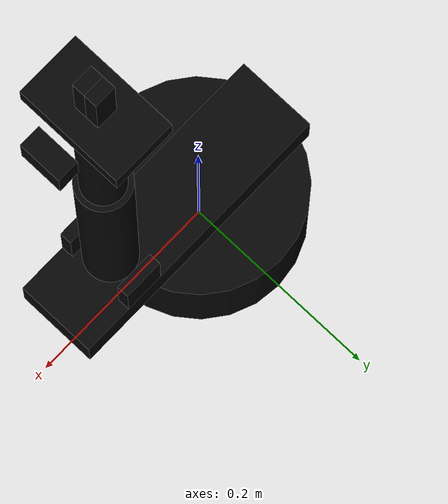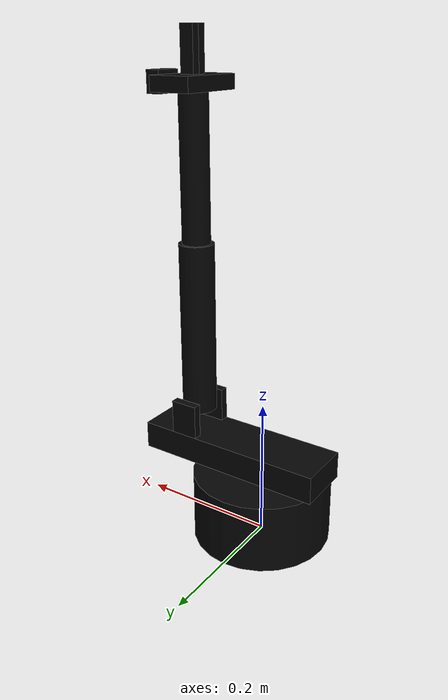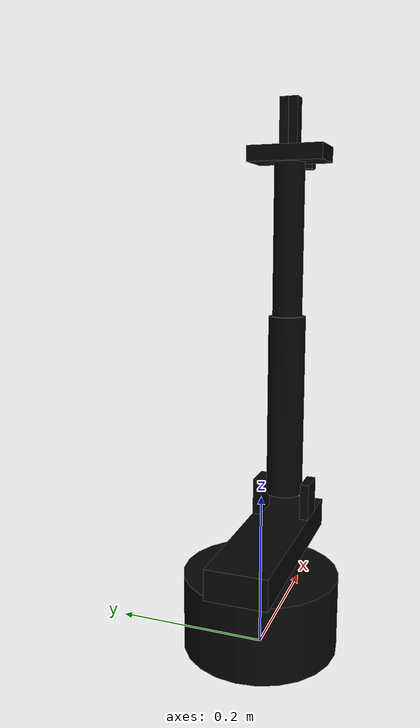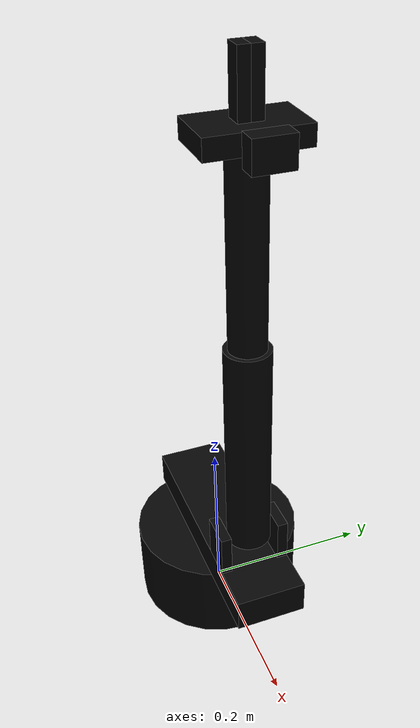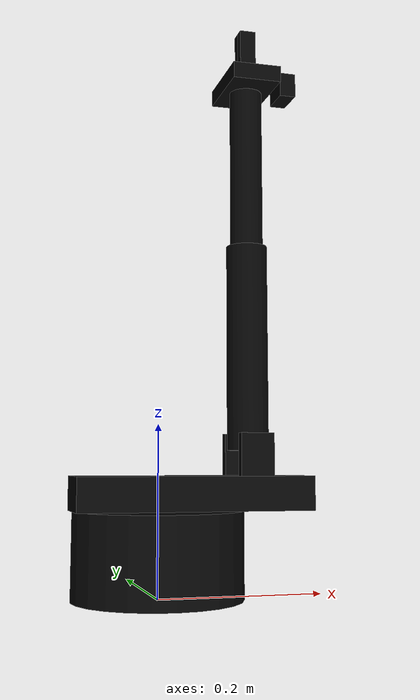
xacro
<?xml version="1.0"?>
<robot name="learning_arm" xmlns:xacro="http://www.ros.org/wiki/xacro">

    <xacro:arg name="gazebo" default="false" />

    <xacro:property name="base_height" value="0.1" />
    <xacro:property name="pedestal_height" value="0.04" />
    <xacro:property name="upper_arm_length" value="0.25" />
    <xacro:property name="forearm_length" value="0.20" />
    <xacro:property name="palm_height" value="0.02" />
    <xacro:property name="finger_length" value="0.06" />
    <xacro:property name="finger_thickness" value="0.012" />
    <xacro:property name="finger_travel" value="0.035" />

    <!-- Provisional masses in kg; uniform solid bodies, not measured hardware. -->
    <xacro:property name="base_mass" value="1.5" />
    <xacro:property name="pedestal_mass" value="0.30" />
    <xacro:property name="upper_arm_mass" value="0.40" />
    <xacro:property name="forearm_mass" value="0.25" />
    <xacro:property name="palm_mass" value="0.12" />
    <xacro:property name="finger_mass" value="0.03" />

    <!-- xyz is the shape center AND center of mass relative to the link frame.
         The inertia tensor is about that center, with axes aligned to the link. -->
    <xacro:macro name="box_physics" params="mass sx sy sz xyz">
        <collision>
            <origin xyz="${xyz}" rpy="0 0 0" />
            <geometry>
                <box size="${sx} ${sy} ${sz}" />
            </geometry>
        </collision>
        <inertial>
            <origin xyz="${xyz}" rpy="0 0 0" />
            <mass value="${mass}" />
            <inertia ixx="${mass * (sy * sy + sz * sz) / 12}"
                iyy="${mass * (sx * sx + sz * sz) / 12}"
                izz="${mass * (sx * sx + sy * sy) / 12}"
                ixy="0" ixz="0" iyz="0" />
        </inertial>
    </xacro:macro>

    <!-- Solid cylinder aligned along local Z. -->
    <xacro:macro name="cylinder_physics" params="mass radius length xyz">
        <collision>
            <origin xyz="${xyz}" rpy="0 0 0" />
            <geometry>
                <cylinder radius="${radius}" length="${length}" />
            </geometry>
        </collision>
        <inertial>
            <origin xyz="${xyz}" rpy="0 0 0" />
            <mass value="${mass}" />
            <inertia ixx="${mass * (3 * radius * radius + length * length) / 12}"
                iyy="${mass * (3 * radius * radius + length * length) / 12}"
                izz="${mass * radius * radius / 2}"
                ixy="0" ixz="0" iyz="0" />
        </inertial>
    </xacro:macro>

    <!-- Reusable visual colors; RGBA components range from 0 to 1. -->
    <material name="black">
        <color rgba="0.02 0.02 0.02 1" />
    </material>

    <!-- Leave contact collisions unnamed so Gazebo applies the link's friction
         settings to every generated collision during URDF-to-SDF conversion. -->
    <xacro:macro name="finger_contact" params="x z length">
        <collision>
            <origin xyz="${x} 0 ${z}" rpy="0 0 0" />
            <geometry><box size="0.008 ${finger_thickness} ${length}" /></geometry>
        </collision>
    </xacro:macro>

    <xacro:macro name="finger_physics">
        <xacro:finger_contact x="-0.006" z="0.02" length="0.04" />
        <xacro:finger_contact x="-0.006" z="0.0525" length="0.015" />
        <xacro:finger_contact x="0.006" z="0.02" length="0.04" />
        <xacro:finger_contact x="0.006" z="0.0525" length="0.015" />
        <inertial>
            <origin xyz="0 0 ${finger_length / 2}" rpy="0 0 0" />
            <mass value="${finger_mass}" />
            <inertia ixx="${finger_mass * (finger_thickness ** 2 + finger_length ** 2) / 12}"
                iyy="${finger_mass * (0.02 ** 2 + finger_length ** 2) / 12}"
                izz="${finger_mass * (0.02 ** 2 + finger_thickness ** 2) / 12}"
                ixy="0" ixz="0" iyz="0" />
        </inertial>
    </xacro:macro>

    <!-- Massless kinematic root: avoids KDL's root-link inertia limitation.
         This reference frame does NOT fix the robot to the Gazebo world. -->
    <link name="base_footprint" />
    <joint name="base_reference_joint" type="fixed">
        <parent link="base_footprint" />
        <child link="base_link" />
        <origin xyz="0 0 0" rpy="0 0 0" />
    </joint>

    <link name="base_link">
        <visual>
            <origin xyz="0 0 ${base_height / 2}" rpy="0 0 0" />
            <geometry>
                <cylinder radius="0.1" length="${base_height}" />
            </geometry>
            <material name="black" />
        </visual>
        <xacro:cylinder_physics mass="${base_mass}" radius="0.1"
            length="${base_height}" xyz="0 0 ${base_height / 2}" />
    </link>

    <!-- The joint frame is at the top of the stationary base. -->
    <joint name="base_rotation_joint" type="revolute">
        <parent link="base_link" />
        <child link="shoulder_link" />
        <origin xyz="0 0 ${base_height}" rpy="0 0 0" />
        <axis xyz="0 0 1" />
        <!-- Provisional limits: radians, N m, and radians/second. -->
        <limit lower="${-pi}" upper="${pi}" effort="10" velocity="1" />
        <dynamics damping="0.1" friction="0" />
    </joint>

    <!-- Offset geometry makes base rotation visible; the link frame stays at the joint. -->
    <link name="shoulder_link">
        <visual>
            <origin xyz="0.04 0 ${pedestal_height / 2}" rpy="0 0 0" />
            <geometry>
                <box size="0.28 0.08 ${pedestal_height}" />
            </geometry>
            <material name="black" />
        </visual>
        <xacro:box_physics mass="${pedestal_mass}" sx="0.28" sy="0.08"
            sz="${pedestal_height}" xyz="0.04 0 ${pedestal_height / 2}" />
    </link>

    <xacro:macro name="shoulder_support" params="name side">
        <joint name="${name}_mount_joint" type="fixed">
            <parent link="shoulder_link" />
            <child link="${name}" />
            <origin xyz="0.11 ${side * 0.034} ${pedestal_height + 0.025}"
                rpy="0 0 0" />
        </joint>
        <link name="${name}">
            <visual>
                <geometry>
                    <box size="0.04 0.012 0.05" />
                </geometry>
                <material name="black" />
            </visual>
            <xacro:box_physics mass="0.03" sx="0.04" sy="0.012" sz="0.05"
                xyz="0 0 0" />
        </link>
    </xacro:macro>

    <xacro:shoulder_support name="left_shoulder_support_link" side="1" />
    <xacro:shoulder_support name="right_shoulder_support_link" side="-1" />

    <!-- Shoulder pitch: local Y turns with the base rotation joint. -->
    <joint name="shoulder_joint" type="revolute">
        <parent link="shoulder_link" />
        <child link="upper_arm_link" />
        <origin xyz="0.11 0 ${pedestal_height + 0.025 + 0.005}" rpy="0 0 0" />
        <axis xyz="0 1 0" />
        <limit lower="${-pi / 2}" upper="${pi / 2}" effort="10" velocity="1" />
        <dynamics damping="0.1" friction="0" />
    </joint>

    <!-- Frame at the shoulder pivot; shape extends along the link's positive Z. -->
    <link name="upper_arm_link">
        <visual>
            <origin xyz="0 0 ${upper_arm_length / 2}" rpy="0 0 0" />
            <geometry>
                <cylinder radius="0.025" length="${upper_arm_length}" />
            </geometry>
            <material name="black" />
        </visual>
        <xacro:cylinder_physics
            mass="${upper_arm_mass}"
            radius="0.025"
            length="${upper_arm_length}"
            xyz="0 0 ${upper_arm_length / 2}" />
    </link>

    <joint name="elbow_joint" type="revolute">
        <parent link="upper_arm_link" />
        <child link="forearm_link" />
        <origin xyz="0 0 ${upper_arm_length}" rpy="0 0 0" />
        <axis xyz="0 1 0" />
        <limit lower="${-3 * pi / 4}" upper="${3 * pi / 4}" effort="5" velocity="1" />
        <dynamics damping="0.05" friction="0" />
    </joint>

    <link name="forearm_link">
        <visual>
            <origin xyz="0 0 ${forearm_length / 2}" rpy="0 0 0" />
            <geometry>
                <cylinder radius="0.02" length="${forearm_length}" />
            </geometry>
            <material name="black" />
        </visual>
        <xacro:cylinder_physics
            mass="${forearm_mass}"
            radius="0.02"
            length="${forearm_length}"
            xyz="0 0 ${forearm_length / 2}" />
    </link>

    <!-- Wrist pitch tilts the palm and fingers independently of the elbow.
         Zero keeps the previous straight gripper mounting; initial range +/-45 deg. -->
    <joint name="wrist_pitch_joint" type="revolute">
        <parent link="forearm_link" />
        <child link="gripper_palm_link" />
        <origin xyz="0 0 ${forearm_length}" rpy="0 0 0" />
        <axis xyz="0 1 0" />
        <limit lower="${-pi / 4}" upper="${pi / 4}" effort="2" velocity="0.5" />
        <dynamics damping="0.1" friction="0" />
    </joint>

    <link name="gripper_palm_link">
        <visual>
            <origin xyz="0 0 ${palm_height / 2}" rpy="0 0 0" />
            <geometry>
                <box size="0.06 0.10 ${palm_height}" />
            </geometry>
            <material name="black" />
        </visual>
        <xacro:box_physics mass="${palm_mass}" sx="0.06" sy="0.10"
            sz="${palm_height}" xyz="0 0 ${palm_height / 2}" />
    </link>

    <!-- Camera beside the palm, looking along the fingers. -->
    <joint name="camera_mount_joint" type="fixed">
        <parent link="gripper_palm_link" />
        <child link="camera_link" />
        <origin xyz="0.05 0 0.01" rpy="0 ${-pi / 2} 0" />
    </joint>

    <link name="camera_link">
        <visual>
            <geometry>
                <box size="0.03 0.04 0.02" />
            </geometry>
            <material name="black" />
        </visual>

        <xacro:box_physics
            mass="0.02"
            sx="0.03"
            sy="0.04"
            sz="0.02"
            xyz="0 0 0" />
    </link>

    <!-- Optical origin at the housing's front face. -->
    <joint name="camera_optical_joint" type="fixed">
        <parent link="camera_link" />
        <child link="camera_optical_frame" />
        <origin xyz="0.015 0 0"
            rpy="${-pi / 2} 0 ${-pi / 2}" />
    </joint>

    <link name="camera_optical_frame" />

    <!-- The position is ONE finger's travel, in metres; total gap = 2 * position. -->
    <joint name="gripper_opening_joint" type="prismatic">
        <parent link="gripper_palm_link" />
        <child link="left_finger_link" />
        <origin xyz="0 ${finger_thickness / 2} ${palm_height}" rpy="0 0 0" />
        <axis xyz="0 1 0" />
        <limit lower="0" upper="${finger_travel}" effort="10" velocity="0.05" />
        <dynamics damping="1" friction="0" />
    </joint>

    <link name="left_finger_link">
        <visual>
            <origin xyz="0 0 ${finger_length / 2}" rpy="0 0 0" />
            <geometry>
                <box size="0.02 ${finger_thickness} ${finger_length}" />
            </geometry>
            <material name="black" />
        </visual>
        <xacro:finger_physics />
    </link>

    <joint name="right_finger_joint" type="prismatic">
        <parent link="gripper_palm_link" />
        <child link="right_finger_link" />
        <origin xyz="0 ${-finger_thickness / 2} ${palm_height}" rpy="0 0 0" />
        <axis xyz="0 -1 0" />
        <limit lower="0" upper="${finger_travel}" effort="10" velocity="0.05" />
        <dynamics damping="1" friction="0" />
        <!-- Same positive travel, opposite axis: symmetric opening. -->
        <!-- RViz supports mimic; the current Gazebo engine does not.
             Gazebo instead sends the same target to two finger controllers. -->
        <xacro:unless value="$(arg gazebo)">
            <mimic joint="gripper_opening_joint" multiplier="1" offset="0" />
        </xacro:unless>
    </joint>

    <link name="right_finger_link">
        <visual>
            <origin xyz="0 0 ${finger_length / 2}" rpy="0 0 0" />
            <geometry>
                <box size="0.02 ${finger_thickness} ${finger_length}" />
            </geometry>
            <material name="black" />
        </visual>
        <xacro:finger_physics />
    </link>

    <!-- Reference halfway along the fingers, centered in the opening. -->
    <joint name="tool_joint" type="fixed">
        <parent link="gripper_palm_link" />
        <child link="tool0" />
        <origin xyz="0 0 ${palm_height + finger_length / 2}" rpy="0 0 0" />
    </joint>
    <link name="tool0" />

    <xacro:if value="$(arg gazebo)">
        <xacro:include filename="$(find arm_gazebo)/urdf/gazebo.xacro" />
    </xacro:if>

</robot>
